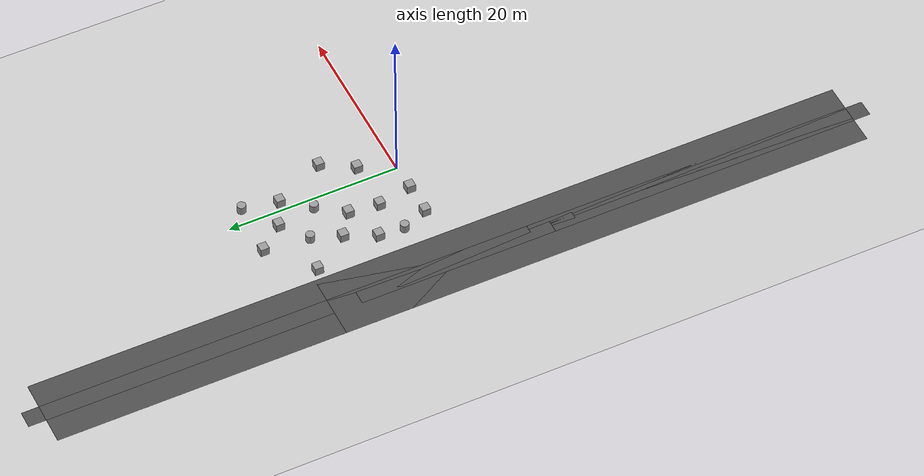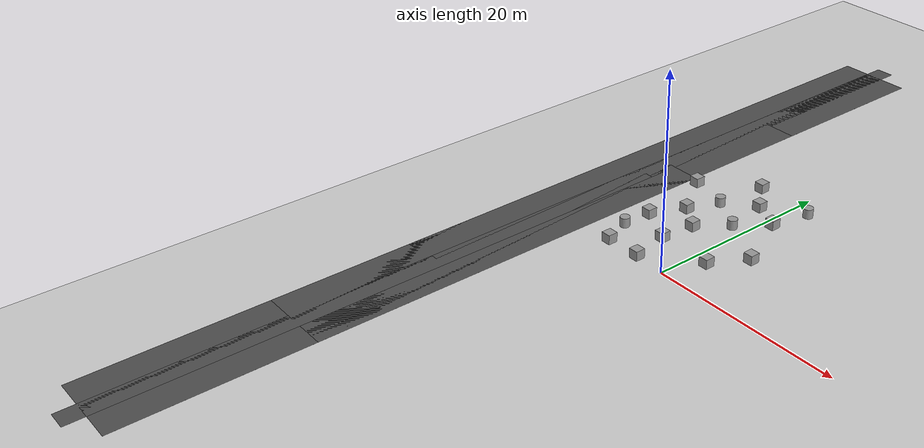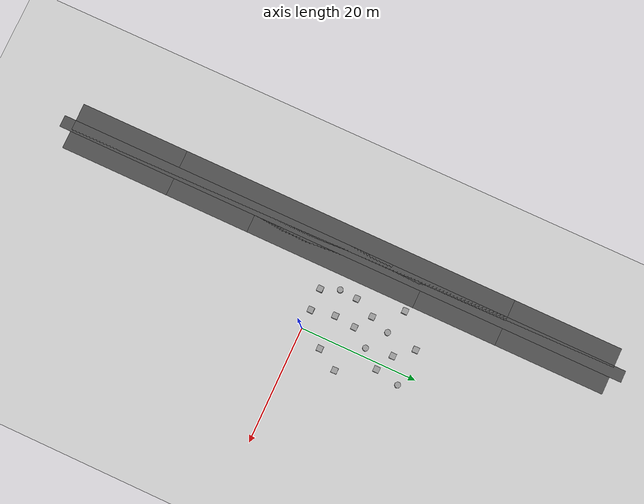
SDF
<sdf version="1.6">
 <world name="default">
  <model name="ground_plane">
   <static>1</static>
   <link name="link">
    <collision name="collision">
     <geometry><plane><normal>0 0 1</normal><size>100 100</size></plane></geometry>
     <surface><friction><ode><mu>100</mu><mu2>50</mu2></ode></friction></surface>
    </collision>
    <visual name="visual">
     <cast_shadows>0</cast_shadows>
     <geometry><plane><normal>0 0 1</normal><size>100 100</size></plane></geometry>
     <material>
      <script><uri>file://media/materials/scripts/gazebo.material</uri><name>Gazebo/Grey</name></script>
     </material>
    </visual>
   </link>
  </model>
  <model name="road_segment">
   <pose>-14.5 0 0 0 -0 1.57</pose>
   <static>1</static>
   <link name="road">
    <collision name="collision">
     <geometry><box><size>96 8 0.001</size></box></geometry>
     <surface><friction><ode><mu>100</mu><mu2>50</mu2></ode></friction></surface>
    </collision>
    <visual name="visual">
     <geometry><box><size>96 8 0.001</size></box></geometry>
     <material>
      <script><uri>file://media/materials/scripts/gazebo.material</uri><name>Gazebo/Road</name></script>
     </material>
    </visual>
   </link>
   <link name="road1">
    <collision name="collision">
     <geometry><box><size>58.5 8 0.001</size></box></geometry>
     <surface><friction><ode><mu>100</mu><mu2>50</mu2></ode></friction></surface>
    </collision>
    <visual name="visual">
     <geometry><box><size>58.5 8 0.001</size></box></geometry>
     <material>
      <script><uri>file://media/materials/scripts/gazebo.material</uri><name>Gazebo/Road</name></script>
     </material>
    </visual>
   </link>
   <link name="road2">
    <collision name="collision">
     <geometry><box><size>29.5 8 0.001</size></box></geometry>
     <surface><friction><ode><mu>100</mu><mu2>50</mu2></ode></friction></surface>
    </collision>
    <visual name="visual">
     <geometry><box><size>29.5 8 0.001</size></box></geometry>
     <material>
      <script><uri>file://media/materials/scripts/gazebo.material</uri><name>Gazebo/Road</name></script>
     </material>
    </visual>
   </link>
   <link name="road3">
    <collision name="collision">
     <geometry><box><size>58.5 8 0.001</size></box></geometry>
     <surface><friction><ode><mu>100</mu><mu2>50</mu2></ode></friction></surface>
    </collision>
    <visual name="visual">
     <geometry><box><size>58.5 8 0.001</size></box></geometry>
     <material>
      <script><uri>file://media/materials/scripts/gazebo.material</uri><name>Gazebo/Road</name></script>
     </material>
    </visual>
   </link>
   <link name="road4">
    <collision name="collision">
     <geometry><box><size>100 2 0.001</size></box></geometry>
     <surface><friction><ode><mu>100</mu><mu2>50</mu2></ode></friction></surface>
    </collision>
    <visual name="visual">
     <geometry><box><size>100 2 0.001</size></box></geometry>
     <material>
      <script><uri>file://media/materials/scripts/gazebo.material</uri><name>Gazebo/Road</name></script>
     </material>
    </visual>
   </link>
   <link name="road5">
    <collision name="collision">
     <geometry><box><size>100 2 0.001</size></box></geometry>
     <surface><friction><ode><mu>100</mu><mu2>50</mu2></ode></friction></surface>
    </collision>
    <visual name="visual">
     <geometry><box><size>100 2 0.001</size></box></geometry>
     <material>
      <script><uri>file://media/materials/scripts/gazebo.material</uri><name>Gazebo/Road</name></script>
     </material>
    </visual>
   </link>
   <link name="road6">
    <collision name="collision">
     <geometry><box><size>96 2 0.001</size></box></geometry>
     <surface><friction><ode><mu>100</mu><mu2>50</mu2></ode></friction></surface>
    </collision>
    <visual name="visual">
     <geometry><box><size>96 2 0.001</size></box></geometry>
     <material>
      <script><uri>file://media/materials/scripts/gazebo.material</uri><name>Gazebo/Road</name></script>
     </material>
    </visual>
   </link>
   <link name="road7">
    <collision name="collision">
     <geometry><box><size>96 2 0.001</size></box></geometry>
     <surface><friction><ode><mu>100</mu><mu2>50</mu2></ode></friction></surface>
    </collision>
    <visual name="visual">
     <geometry><box><size>96 2 0.001</size></box></geometry>
     <material>
      <script><uri>file://media/materials/scripts/gazebo.material</uri><name>Gazebo/Road</name></script>
     </material>
    </visual>
   </link>
   <link name="road8">
    <collision name="collision">
     <geometry><box><size>31 2 0.001</size></box></geometry>
     <surface><friction><ode><mu>100</mu><mu2>50</mu2></ode></friction></surface>
    </collision>
    <visual name="visual">
     <geometry><box><size>31 2 0.001</size></box></geometry>
     <material>
      <script><uri>file://media/materials/scripts/gazebo.material</uri><name>Gazebo/Road</name></script>
     </material>
    </visual>
   </link>
   <link name="road9">
    <collision name="collision">
     <geometry><box><size>26 2 0.001</size></box></geometry>
     <surface><friction><ode><mu>100</mu><mu2>50</mu2></ode></friction></surface>
    </collision>
    <visual name="visual">
     <geometry><box><size>26 2 0.001</size></box></geometry>
     <material>
      <script><uri>file://media/materials/scripts/gazebo.material</uri><name>Gazebo/Road</name></script>
     </material>
    </visual>
   </link>
   <link name="road10">
    <collision name="collision">
     <geometry><box><size>28.5 2 0.001</size></box></geometry>
     <surface><friction><ode><mu>100</mu><mu2>50</mu2></ode></friction></surface>
    </collision>
    <visual name="visual">
     <geometry><box><size>28.5 2 0.001</size></box></geometry>
     <material>
      <script><uri>file://media/materials/scripts/gazebo.material</uri><name>Gazebo/Road</name></script>
     </material>
    </visual>
   </link>
   <link name="road11">
    <collision name="collision">
     <geometry><box><size>29.5 2 0.001</size></box></geometry>
     <surface><friction><ode><mu>100</mu><mu2>50</mu2></ode></friction></surface>
    </collision>
    <visual name="visual">
     <geometry><box><size>29.5 2 0.001</size></box></geometry>
     <material>
      <script><uri>file://media/materials/scripts/gazebo.material</uri><name>Gazebo/Road</name></script>
     </material>
    </visual>
   </link>
   <link name="road12">
    <collision name="collision">
     <geometry><box><size>23 2 0.001</size></box></geometry>
     <surface><friction><ode><mu>100</mu><mu2>50</mu2></ode></friction></surface>
    </collision>
    <visual name="visual">
     <geometry><box><size>23 2 0.001</size></box></geometry>
     <material>
      <script><uri>file://media/materials/scripts/gazebo.material</uri><name>Gazebo/Road</name></script>
     </material>
    </visual>
   </link>
   <link name="road13">
    <collision name="collision">
     <geometry><box><size>18 2 0.001</size></box></geometry>
     <surface><friction><ode><mu>100</mu><mu2>50</mu2></ode></friction></surface>
    </collision>
    <visual name="visual">
     <geometry><box><size>18 2 0.001</size></box></geometry>
     <material>
      <script><uri>file://media/materials/scripts/gazebo.material</uri><name>Gazebo/Road</name></script>
     </material>
    </visual>
   </link>
  </model>
  <model name="unit_box_1">
   <pose>-4.05992 4.0176 0.499995 0 1e-05 0</pose>
   <link name="link">
    <inertial>
     <mass>1</mass>
     <inertia>
      <ixx>0.166667</ixx>
      <ixy>0</ixy>
      <ixz>0</ixz>
      <iyy>0.166667</iyy>
      <iyz>0</iyz>
      <izz>0.166667</izz>
     </inertia>
    </inertial>
    <collision name="collision"><geometry><box><size>1 1 1</size></box></geometry></collision>
    <visual name="visual">
     <geometry><box><size>1 1 1</size></box></geometry>
     <material>
      <script><name>Gazebo/Grey</name><uri>file://media/materials/scripts/gazebo.material</uri></script>
     </material>
    </visual>
   </link>
  </model>
  <model name="unit_box_9">
   <pose>1.75653 3.97774 0.499995 0 1e-05 0</pose>
   <link name="link">
    <inertial>
     <mass>1</mass>
     <inertia>
      <ixx>0.166667</ixx>
      <ixy>0</ixy>
      <ixz>0</ixz>
      <iyy>0.166667</iyy>
      <iyz>0</iyz>
      <izz>0.166667</izz>
     </inertia>
    </inertial>
    <collision name="collision"><geometry><box><size>1 1 1</size></box></geometry></collision>
    <visual name="visual">
     <geometry><box><size>1 1 1</size></box></geometry>
     <material>
      <script><name>Gazebo/Grey</name><uri>file://media/materials/scripts/gazebo.material</uri></script>
     </material>
    </visual>
   </link>
  </model>
  <model name="unit_box_10">
   <pose>-7 -1e-06 0.499995 0 1e-05 0</pose>
   <link name="link">
    <inertial>
     <mass>1</mass>
     <inertia>
      <ixx>0.166667</ixx>
      <ixy>0</ixy>
      <ixz>0</ixz>
      <iyy>0.166667</iyy>
      <iyz>0</iyz>
      <izz>0.166667</izz>
     </inertia>
    </inertial>
    <collision name="collision"><geometry><box><size>1 1 1</size></box></geometry></collision>
    <visual name="visual">
     <geometry><box><size>1 1 1</size></box></geometry>
     <material>
      <script><name>Gazebo/Grey</name><uri>file://media/materials/scripts/gazebo.material</uri></script>
     </material>
    </visual>
   </link>
  </model>
  <model name="unit_box_15">
   <pose>-8 6 0.499995 1e-05 -0 0</pose>
   <link name="link">
    <inertial>
     <mass>1</mass>
     <inertia>
      <ixx>0.166667</ixx>
      <ixy>0</ixy>
      <ixz>0</ixz>
      <iyy>0.166667</iyy>
      <iyz>0</iyz>
      <izz>0.166667</izz>
     </inertia>
    </inertial>
    <collision name="collision"><geometry><box><size>1 1 1</size></box></geometry></collision>
    <visual name="visual">
     <geometry><box><size>1 1 1</size></box></geometry>
     <material>
      <script><name>Gazebo/Grey</name><uri>file://media/materials/scripts/gazebo.material</uri></script>
     </material>
    </visual>
   </link>
  </model>
  <model name="unit_box_16">
   <pose>-4.45671 18 0.499995 0 1e-05 0</pose>
   <link name="link">
    <inertial>
     <mass>1</mass>
     <inertia>
      <ixx>0.166667</ixx>
      <ixy>0</ixy>
      <ixz>0</ixz>
      <iyy>0.166667</iyy>
      <iyz>0</iyz>
      <izz>0.166667</izz>
     </inertia>
    </inertial>
    <collision name="collision"><geometry><box><size>1 1 1</size></box></geometry></collision>
    <visual name="visual">
     <geometry><box><size>1 1 1</size></box></geometry>
     <material>
      <script><name>Gazebo/Grey</name><uri>file://media/materials/scripts/gazebo.material</uri></script>
     </material>
    </visual>
   </link>
  </model>
  <model name="unit_box_19">
   <pose>3.92103 7.56154 0.499995 0 1e-05 0</pose>
   <link name="link">
    <inertial>
     <mass>1</mass>
     <inertia>
      <ixx>0.166667</ixx>
      <ixy>0</ixy>
      <ixz>0</ixz>
      <iyy>0.166667</iyy>
      <iyz>0</iyz>
      <izz>0.166667</izz>
     </inertia>
    </inertial>
    <collision name="collision"><geometry><box><size>1 1 1</size></box></geometry></collision>
    <visual name="visual">
     <geometry><box><size>1 1 1</size></box></geometry>
     <material>
      <script><name>Gazebo/Grey</name><uri>file://media/materials/scripts/gazebo.material</uri></script>
     </material>
    </visual>
   </link>
  </model>
  <model name="unit_cylinder_7">
   <pose>1.85633 17.6809 0.499996 3e-06 2e-06 0</pose>
   <link name="link">
    <inertial>
     <mass>1</mass>
     <inertia><ixx>0.145833</ixx><ixy>0</ixy><ixz>0</ixz><iyy>0.145833</iyy><iyz>0</iyz><izz>0.125</izz></inertia>
    </inertial>
    <collision name="collision">
     <geometry><cylinder><radius>0.5</radius><length>1</length></cylinder></geometry>
    </collision>
    <visual name="visual">
     <geometry><cylinder><radius>0.5</radius><length>1</length></cylinder></geometry>
     <material>
      <script><name>Gazebo/Grey</name><uri>file://media/materials/scripts/gazebo.material</uri></script>
     </material>
    </visual>
   </link>
  </model>
  <model name="unit_cylinder_9">
   <pose>-5.11332 12.7643 0.500497 -5e-06 1e-06 -0.000528</pose>
   <link name="link">
    <inertial>
     <mass>1</mass>
     <inertia><ixx>0.145833</ixx><ixy>0</ixy><ixz>0</ixz><iyy>0.145833</iyy><iyz>0</iyz><izz>0.125</izz></inertia>
    </inertial>
    <collision name="collision">
     <geometry><cylinder><radius>0.5</radius><length>1</length></cylinder></geometry>
    </collision>
    <visual name="visual">
     <geometry><cylinder><radius>0.5</radius><length>1</length></cylinder></geometry>
     <material>
      <script><name>Gazebo/Grey</name><uri>file://media/materials/scripts/gazebo.material</uri></script>
     </material>
    </visual>
   </link>
  </model>
  <model name="unit_cylinder_10">
   <pose>-1.37097 10.5771 0.50049 -0 -0 -0.000624</pose>
   <link name="link">
    <inertial>
     <mass>1</mass>
     <inertia><ixx>0.145833</ixx><ixy>0</ixy><ixz>0</ixz><iyy>0.145833</iyy><iyz>0</iyz><izz>0.125</izz></inertia>
    </inertial>
    <collision name="collision">
     <geometry><cylinder><radius>0.5</radius><length>1</length></cylinder></geometry>
    </collision>
    <visual name="visual">
     <geometry><cylinder><radius>0.5</radius><length>1</length></cylinder></geometry>
     <material>
      <script><name>Gazebo/Grey</name><uri>file://media/materials/scripts/gazebo.material</uri></script>
     </material>
    </visual>
   </link>
  </model>
  <model name="unit_box_23">
   <pose>-3.27657 0.046624 0.499995 0 1e-05 0</pose>
   <link name="link">
    <inertial>
     <mass>1</mass>
     <inertia>
      <ixx>0.166667</ixx>
      <ixy>0</ixy>
      <ixz>0</ixz>
      <iyy>0.166667</iyy>
      <iyz>0</iyz>
      <izz>0.166667</izz>
     </inertia>
    </inertial>
    <collision name="collision"><geometry><box><size>1 1 1</size></box></geometry></collision>
    <visual name="visual">
     <geometry><box><size>1 1 1</size></box></geometry>
     <material>
      <script><name>Gazebo/Grey</name><uri>file://media/materials/scripts/gazebo.material</uri></script>
     </material>
    </visual>
   </link>
  </model>
  <model name="unit_box_26">
   <pose>1.00463 13.5831 0.5005 -0 -0 -0</pose>
   <link name="link">
    <inertial>
     <mass>1</mass>
     <inertia>
      <ixx>0.166667</ixx>
      <ixy>0</ixy>
      <ixz>0</ixz>
      <iyy>0.166667</iyy>
      <iyz>0</iyz>
      <izz>0.166667</izz>
     </inertia>
    </inertial>
    <collision name="collision"><geometry><box><size>1 1 1</size></box></geometry></collision>
    <visual name="visual">
     <geometry><box><size>1 1 1</size></box></geometry>
     <material>
      <script><name>Gazebo/Grey</name><uri>file://media/materials/scripts/gazebo.material</uri></script>
     </material>
    </visual>
   </link>
  </model>
  <model name="unit_box_27">
   <pose>-3.67137 7.55556 0.499995 1e-05 -0 0</pose>
   <link name="link">
    <inertial>
     <mass>1</mass>
     <inertia>
      <ixx>0.166667</ixx>
      <ixy>0</ixy>
      <ixz>0</ixz>
      <iyy>0.166667</iyy>
      <iyz>0</iyz>
      <izz>0.166667</izz>
     </inertia>
    </inertial>
    <collision name="collision"><geometry><box><size>1 1 1</size></box></geometry></collision>
    <visual name="visual">
     <geometry><box><size>1 1 1</size></box></geometry>
     <material>
      <script><name>Gazebo/Grey</name><uri>file://media/materials/scripts/gazebo.material</uri></script>
     </material>
    </visual>
   </link>
  </model>
  <model name="unit_cylinder_15">
   <pose>-8.18992 3.00215 0.499992 -3e-06 2e-06 0</pose>
   <link name="link">
    <inertial>
     <mass>1</mass>
     <inertia><ixx>0.145833</ixx><ixy>0</ixy><ixz>0</ixz><iyy>0.145833</iyy><iyz>0</iyz><izz>0.125</izz></inertia>
    </inertial>
    <collision name="collision">
     <geometry><cylinder><radius>0.5</radius><length>1</length></cylinder></geometry>
    </collision>
    <visual name="visual">
     <geometry><cylinder><radius>0.5</radius><length>1</length></cylinder></geometry>
     <material>
      <script><name>Gazebo/Grey</name><uri>file://media/materials/scripts/gazebo.material</uri></script>
     </material>
    </visual>
   </link>
  </model>
  <model name="unit_box_43">
   <pose>-9.41968 13.8872 0.5005 -0 -0 -0</pose>
   <link name="link">
    <inertial>
     <mass>1</mass>
     <inertia>
      <ixx>0.166667</ixx>
      <ixy>0</ixy>
      <ixz>0</ixz>
      <iyy>0.166667</iyy>
      <iyz>0</iyz>
      <izz>0.166667</izz>
     </inertia>
    </inertial>
    <collision name="collision"><geometry><box><size>1 1 1</size></box></geometry></collision>
    <visual name="visual">
     <geometry><box><size>1 1 1</size></box></geometry>
     <material>
      <script><name>Gazebo/Grey</name><uri>file://media/materials/scripts/gazebo.material</uri></script>
     </material>
    </visual>
   </link>
  </model>
  <model name="unit_box_44">
   <pose>-6.39779 9.46261 0.5005 -0 -0 -0</pose>
   <link name="link">
    <inertial>
     <mass>1</mass>
     <inertia>
      <ixx>0.166667</ixx>
      <ixy>0</ixy>
      <ixz>0</ixz>
      <iyy>0.166667</iyy>
      <iyz>0</iyz>
      <izz>0.166667</izz>
     </inertia>
    </inertial>
    <collision name="collision"><geometry><box><size>1 1 1</size></box></geometry></collision>
    <visual name="visual">
     <geometry><box><size>1 1 1</size></box></geometry>
     <material>
      <script><name>Gazebo/Grey</name><uri>file://media/materials/scripts/gazebo.material</uri></script>
     </material>
    </visual>
   </link>
  </model>
  <model name="unit_box_45">
   <pose>-2.03147 15.0644 0.5005 -0 -0 -0</pose>
   <link name="link">
    <inertial>
     <mass>1</mass>
     <inertia>
      <ixx>0.166667</ixx>
      <ixy>0</ixy>
      <ixz>0</ixz>
      <iyy>0.166667</iyy>
      <iyz>0</iyz>
      <izz>0.166667</izz>
     </inertia>
    </inertial>
    <collision name="collision"><geometry><box><size>1 1 1</size></box></geometry></collision>
    <visual name="visual">
     <geometry><box><size>1 1 1</size></box></geometry>
     <material>
      <script><name>Gazebo/Grey</name><uri>file://media/materials/scripts/gazebo.material</uri></script>
     </material>
    </visual>
   </link>
  </model>
 </world>
</sdf>
